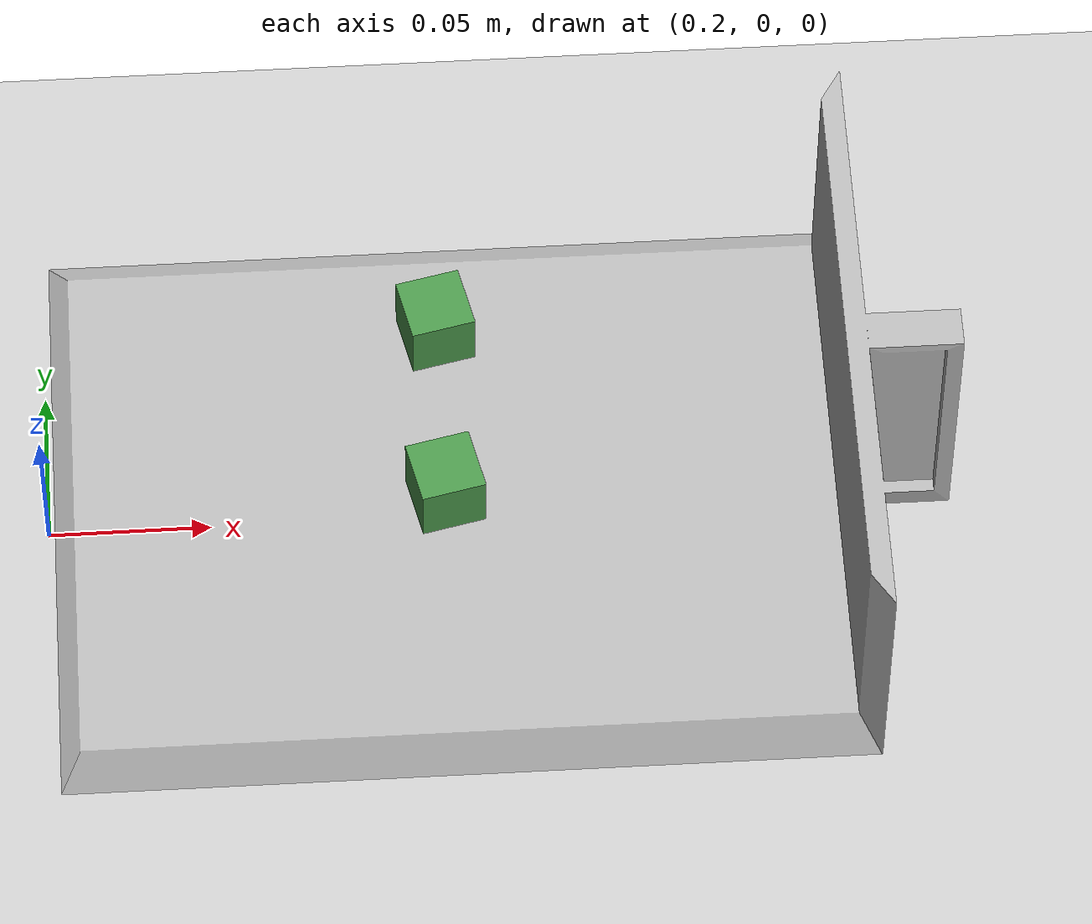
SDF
<?xml version="1.0"?>
<sdf version="1.6">
  <world name="default">
    <include>
      <uri>model://ground_plane</uri>
    </include>

    <include>
      <uri>model://sun</uri>
    </include>
    world
    <include>
      <uri>model://box1</uri>
      <name>box1</name>

      <pose>0.322014 0.061224 0.017076 1.480512 1.558991 1.701574</pose>

    </include>

    <include>
      <uri>model://bin_model</uri>
      <name>bin</name>
      <pose>0.331280 0 0.069323 0 0 1.5708</pose>
    </include>

    <include>
      <uri>model://box1</uri>
      <name>box2</name>
      <pose>0.322014 0.001106 0.017076 1.480512 1.558991 1.701574</pose>
    </include>
  </world>
</sdf>

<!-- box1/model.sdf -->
<sdf version='1.6'>
  <model name='box1'>
    <pose>1 2 0 0 0 0</pose>
    <link name='link'>
      <inertial>
        <mass>0.00937500</mass>
        <inertia>
          <!-- inertias are tricky to compute -->

          <ixx>0.00000391</ixx> <!-- for a box: ixx = 0.083 * mass * (y*y + z*z) -->
          <ixy>0</ixy> <!-- for a box: ixy = 0 -->
          <ixz>0</ixz> <!-- for a box: ixz = 0 -->
          <iyy>0.00000391</iyy> <!-- for a box: iyy = 0.083 * mass * (x*x + z*z) -->
          <iyz>0</iyz> <!-- for a box: iyz = 0 -->
          <izz>0.00000391</izz> <!-- for a box: izz = 0.083 * mass * (x*x + y*y) -->
        </inertia>
      </inertial>
      <pose>0 0 0 0 0 0</pose>
      <collision name='collision'>
        <geometry>
          <box>
            <size>0.02 0.02 0.02</size>
          </box>
        </geometry>
        <surface>
          <friction>
            <ode>
              <mu>100000.0</mu>
              <mu2>10000.0</mu2>
            </ode>
          </friction>
          <contact>
            <ode>
              <kp>10000000.0</kp>
              <kd>1.0</kd>
              <min_depth>0.001</min_depth>
              <max_vel>0.1</max_vel>
            </ode>
          </contact>
        </surface>
      </collision>
      <visual name='visual'>
        <material>
          <ambient>0.3 0.6 0.3 1</ambient>
          <diffuse>0.3 0.6 0.3 1</diffuse>
        </material>
        <geometry>
          <box>
            <size>0.02 0.02 0.02</size>
          </box>
        </geometry>
      </visual>
    </link>
    <plugin name='get_cubes_info' filename='libget_cubes_info.so' />
  </model>
</sdf>

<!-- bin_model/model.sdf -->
<sdf version="1.5">
  <model name="bin">
    <link name="link">
      <inertial>
        <pose>0 0 0.06 0 0 0</pose>
        <mass>0.01037500</mass>
        <inertia>
          <ixx>0.00055575</ixx>
          <ixy>0</ixy>
          <ixz>0</ixz>
          <iyy>0.00055575</iyy>
          <iyz>0</iyz>
          <izz>0.0001755</izz>
        </inertia>
      </inertial>
      <collision name="collision">
        <pose>0.003937 0.0047244 -0.18 0 0 0</pose>
        <geometry>
          <mesh>
            <uri>model://bin_model/meshes/binwowall.dae</uri>
          </mesh>
        </geometry>
        <surface>
          <friction>
            <ode>
              <mu>0.01</mu>
              <mu2>0.01</mu2>
            </ode>
          </friction>
        </surface>
      </collision>
      <visual name="visual">
        <pose>0.003937 0.0047244 -0.18 0 0 0</pose>
        <geometry>
          <mesh>
            <uri>model://bin_model/meshes/binwowall.dae</uri>
          </mesh>
        </geometry>
      </visual>
    </link>
  </model>
</sdf>
